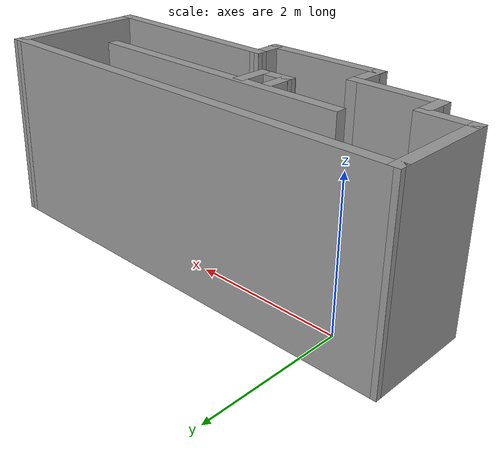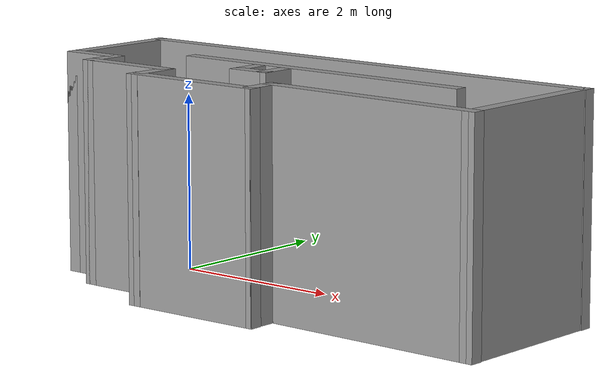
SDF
<?xml version='1.0'?>
<sdf version='1.7'>
  <model name='room'>
    <pose>2.05389 -0.574792 0 0 -0 0</pose>
    <link name='Wall_10'>
      <collision name='Wall_10_Collision'>
        <geometry>
          <box>
            <size>1.5 0.15 2.5</size>
          </box>
        </geometry>
        <pose>0 0 1.25 0 -0 0</pose>
      </collision>
      <visual name='Wall_10_Visual'>
        <pose>0 0 1.25 0 -0 0</pose>
        <geometry>
          <box>
            <size>1.5 0.15 2.5</size>
          </box>
        </geometry>
        <material>
          <script>
            <uri>file://media/materials/scripts/gazebo.material</uri>
            <name>Gazebo/Grey</name>
          </script>
          <ambient>1 1 1 1</ambient>
        </material>
        <meta>
          <layer>0</layer>
        </meta>
      </visual>
      <pose>-2.94552 0.380281 0 0 -0 -1.5708</pose>
    </link>
    <link name='Wall_11'>
      <collision name='Wall_11_Collision'>
        <geometry>
          <box>
            <size>0.75 0.15 2.5</size>
          </box>
        </geometry>
        <pose>0 0 1.25 0 -0 0</pose>
      </collision>
      <visual name='Wall_11_Visual'>
        <pose>0 0 1.25 0 -0 0</pose>
        <geometry>
          <box>
            <size>0.75 0.15 2.5</size>
          </box>
        </geometry>
        <material>
          <script>
            <uri>file://media/materials/scripts/gazebo.material</uri>
            <name>Gazebo/Grey</name>
          </script>
          <ambient>1 1 1 1</ambient>
        </material>
        <meta>
          <layer>0</layer>
        </meta>
      </visual>
      <pose>-2.64552 -0.294719 0 0 -0 0</pose>
    </link>
    <link name='Wall_12'>
      <collision name='Wall_12_Collision'>
        <geometry>
          <box>
            <size>0.5 0.15 2.5</size>
          </box>
        </geometry>
        <pose>0 0 1.25 0 -0 0</pose>
      </collision>
      <visual name='Wall_12_Visual'>
        <pose>0 0 1.25 0 -0 0</pose>
        <geometry>
          <box>
            <size>0.5 0.15 2.5</size>
          </box>
        </geometry>
        <material>
          <script>
            <uri>file://media/materials/scripts/gazebo.material</uri>
            <name>Gazebo/Grey</name>
          </script>
          <ambient>1 1 1 1</ambient>
        </material>
        <meta>
          <layer>0</layer>
        </meta>
      </visual>
      <pose>-2.34551 -0.469719 0 0 -0 -1.5708</pose>
    </link>
    <link name='Wall_13'>
      <collision name='Wall_13_Collision'>
        <geometry>
          <box>
            <size>1.25 0.15 2.5</size>
          </box>
        </geometry>
        <pose>0 0 1.25 0 -0 0</pose>
      </collision>
      <visual name='Wall_13_Visual'>
        <pose>0 0 1.25 0 -0 0</pose>
        <geometry>
          <box>
            <size>1.25 0.15 2.5</size>
          </box>
        </geometry>
        <material>
          <script>
            <uri>file://media/materials/scripts/gazebo.material</uri>
            <name>Gazebo/Grey</name>
          </script>
          <ambient>1 1 1 1</ambient>
        </material>
        <meta>
          <layer>0</layer>
        </meta>
      </visual>
      <pose>-1.79552 -0.644719 0 0 -0 0</pose>
    </link>
    <link name='Wall_14'>
      <collision name='Wall_14_Collision'>
        <geometry>
          <box>
            <size>0.590114 0.15 2.5</size>
          </box>
        </geometry>
        <pose>0 0 1.25 0 -0 0</pose>
      </collision>
      <visual name='Wall_14_Visual'>
        <pose>0 0 1.25 0 -0 0</pose>
        <geometry>
          <box>
            <size>0.590114 0.15 2.5</size>
          </box>
        </geometry>
        <material>
          <script>
            <uri>file://media/materials/scripts/gazebo.material</uri>
            <name>Gazebo/Grey</name>
          </script>
          <ambient>1 1 1 1</ambient>
        </material>
        <meta>
          <layer>0</layer>
        </meta>
      </visual>
      <pose>-1.24552 -0.864719 0 0 -0 -1.5708</pose>
    </link>
    <link name='Wall_15'>
      <collision name='Wall_15_Collision'>
        <geometry>
          <box>
            <size>1.73003 0.15 2.5</size>
          </box>
        </geometry>
        <pose>0 0 1.25 0 -0 0</pose>
      </collision>
      <visual name='Wall_15_Visual'>
        <pose>0 0 1.25 0 -0 0</pose>
        <geometry>
          <box>
            <size>1.73003 0.15 2.5</size>
          </box>
        </geometry>
        <material>
          <script>
            <uri>file://media/materials/scripts/gazebo.material</uri>
            <name>Gazebo/Grey</name>
          </script>
          <ambient>1 1 1 1</ambient>
        </material>
        <meta>
          <layer>0</layer>
        </meta>
      </visual>
      <pose>-0.465515 -1.07472 0 0 -0 0.012658</pose>
    </link>
    <link name='Wall_16'>
      <collision name='Wall_16_Collision'>
        <geometry>
          <box>
            <size>0.5 0.15 2.5</size>
          </box>
        </geometry>
        <pose>0 0 1.25 0 -0 0</pose>
      </collision>
      <visual name='Wall_16_Visual'>
        <pose>0 0 1.25 0 -0 0</pose>
        <geometry>
          <box>
            <size>0.5 0.15 2.5</size>
          </box>
        </geometry>
        <material>
          <script>
            <uri>file://media/materials/scripts/gazebo.material</uri>
            <name>Gazebo/Grey</name>
          </script>
          <ambient>1 1 1 1</ambient>
        </material>
        <meta>
          <layer>0</layer>
        </meta>
      </visual>
      <pose>0.314484 -0.889719 0 0 -0 1.5708</pose>
    </link>
    <link name='Wall_17'>
      <collision name='Wall_17_Collision'>
        <geometry>
          <box>
            <size>2.78048 0.15 2.5</size>
          </box>
        </geometry>
        <pose>0 0 1.25 0 -0 0</pose>
      </collision>
      <visual name='Wall_17_Visual'>
        <pose>0 0 1.25 0 -0 0</pose>
        <geometry>
          <box>
            <size>2.78048 0.15 2.5</size>
          </box>
        </geometry>
        <material>
          <script>
            <uri>file://media/materials/scripts/gazebo.material</uri>
            <name>Gazebo/Grey</name>
          </script>
          <ambient>1 1 1 1</ambient>
        </material>
        <meta>
          <layer>0</layer>
        </meta>
      </visual>
      <pose>1.62949 -0.739719 0 0 -0 -0.019009</pose>
    </link>
    <link name='Wall_18'>
      <collision name='Wall_18_Collision'>
        <geometry>
          <box>
            <size>2 0.15 2.5</size>
          </box>
        </geometry>
        <pose>0 0 1.25 0 -0 0</pose>
      </collision>
      <visual name='Wall_18_Visual'>
        <pose>0 0 1.25 0 -0 0</pose>
        <geometry>
          <box>
            <size>2 0.15 2.5</size>
          </box>
        </geometry>
        <material>
          <script>
            <uri>file://media/materials/scripts/gazebo.material</uri>
            <name>Gazebo/Grey</name>
          </script>
          <ambient>1 1 1 1</ambient>
        </material>
        <meta>
          <layer>0</layer>
        </meta>
      </visual>
      <pose>2.93448 0.160281 0 0 -0 1.5708</pose>
    </link>
    <link name='Wall_19'>
      <collision name='Wall_19_Collision'>
        <geometry>
          <box>
            <size>6.04008 0.15 2.5</size>
          </box>
        </geometry>
        <pose>0 0 1.25 0 -0 0</pose>
      </collision>
      <visual name='Wall_19_Visual'>
        <pose>0 0 1.25 0 -0 0</pose>
        <geometry>
          <box>
            <size>6.04008 0.15 2.5</size>
          </box>
        </geometry>
        <material>
          <script>
            <uri>file://media/materials/scripts/gazebo.material</uri>
            <name>Gazebo/Grey</name>
          </script>
          <ambient>1 1 1 1</ambient>
        </material>
        <meta>
          <layer>0</layer>
        </meta>
      </visual>
      <pose>-0.000516 1.07028 0 0 -0 -3.1365</pose>
    </link>
    <link name='Wall_21'>
      <collision name='Wall_21_Collision'>
        <geometry>
          <box>
            <size>3.75 0.15 2.5</size>
          </box>
        </geometry>
        <pose>0 0 1.25 0 -0 0</pose>
      </collision>
      <visual name='Wall_21_Visual'>
        <pose>0 0 1.25 0 -0 0</pose>
        <geometry>
          <box>
            <size>3.75 0.15 2.5</size>
          </box>
        </geometry>
        <material>
          <script>
            <uri>file://media/materials/scripts/gazebo.material</uri>
            <name>Gazebo/Grey</name>
          </script>
          <ambient>1 1 1 1</ambient>
        </material>
        <meta>
          <layer>0</layer>
        </meta>
      </visual>
      <pose>0.114484 0.295281 0 0 -0 0</pose>
    </link>
    <link name='Wall_23'>
      <collision name='Wall_23_Collision'>
        <geometry>
          <box>
            <size>0.42 0.15 2.5</size>
          </box>
        </geometry>
        <pose>0 0 1.25 0 -0 0</pose>
      </collision>
      <visual name='Wall_23_Visual'>
        <pose>0 0 1.25 0 -0 0</pose>
        <geometry>
          <box>
            <size>0.42 0.15 2.5</size>
          </box>
        </geometry>
        <material>
          <script>
            <uri>file://media/materials/scripts/gazebo.material</uri>
            <name>Gazebo/Grey</name>
          </script>
          <ambient>1 1 1 1</ambient>
        </material>
        <meta>
          <layer>0</layer>
        </meta>
      </visual>
      <pose>-0.665516 0.020281 0 0 -0 -1.5708</pose>
    </link>
    <link name='Wall_26'>
      <collision name='Wall_26_Collision'>
        <geometry>
          <box>
            <size>0.500143 0.15 2.5</size>
          </box>
        </geometry>
        <pose>0 0 1.25 0 -0 0</pose>
      </collision>
      <visual name='Wall_26_Visual'>
        <pose>0 0 1.25 0 -0 0</pose>
        <geometry>
          <box>
            <size>0.500143 0.15 2.5</size>
          </box>
        </geometry>
        <material>
          <script>
            <uri>file://media/materials/scripts/gazebo.material</uri>
            <name>Gazebo/Grey</name>
          </script>
          <ambient>1 1 1 1</ambient>
        </material>
        <meta>
          <layer>0</layer>
        </meta>
      </visual>
      <pose>-0.490515 -0.119719 0 0 -0 0.028564</pose>
    </link>
    <link name='Wall_27'>
      <collision name='Wall_27_Collision'>
        <geometry>
          <box>
            <size>0.5 0.15 2.5</size>
          </box>
        </geometry>
        <pose>0 0 1.25 0 -0 0</pose>
      </collision>
      <visual name='Wall_27_Visual'>
        <pose>0 0 1.25 0 -0 0</pose>
        <geometry>
          <box>
            <size>0.5 0.15 2.5</size>
          </box>
        </geometry>
        <material>
          <script>
            <uri>file://media/materials/scripts/gazebo.material</uri>
            <name>Gazebo/Grey</name>
          </script>
          <ambient>1 1 1 1</ambient>
        </material>
        <meta>
          <layer>0</layer>
        </meta>
      </visual>
      <pose>-0.305516 0.060281 0 0 -0 1.5708</pose>
    </link>
    <static>1</static>
  </model>
</sdf>
